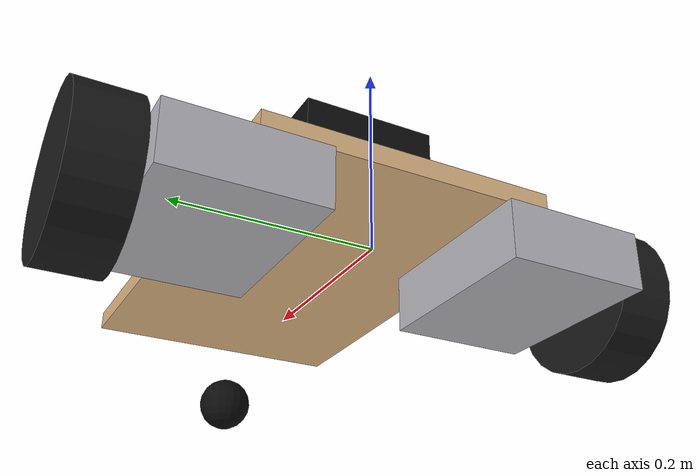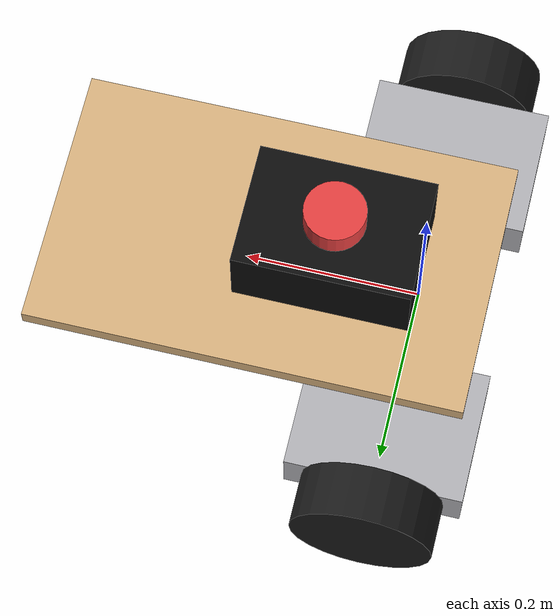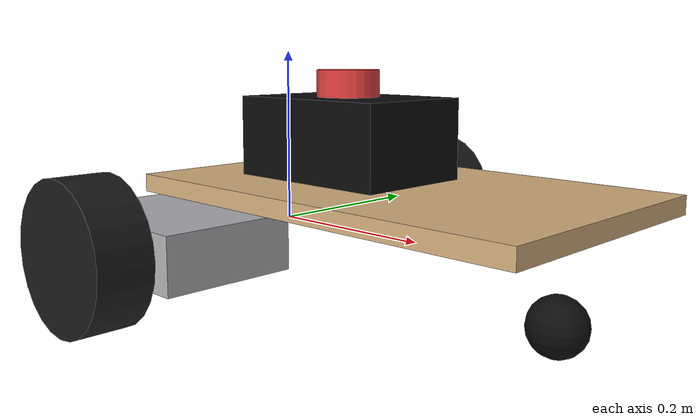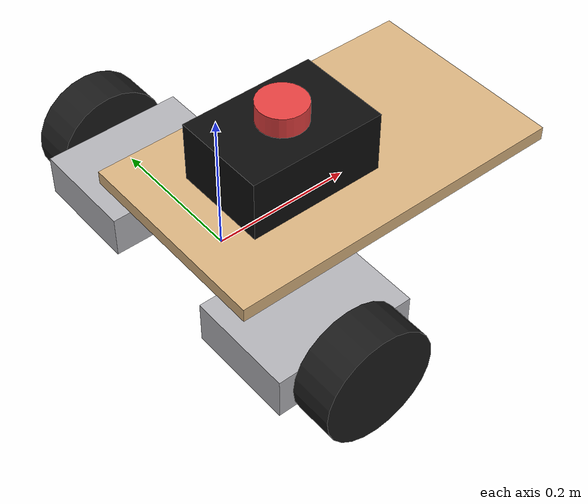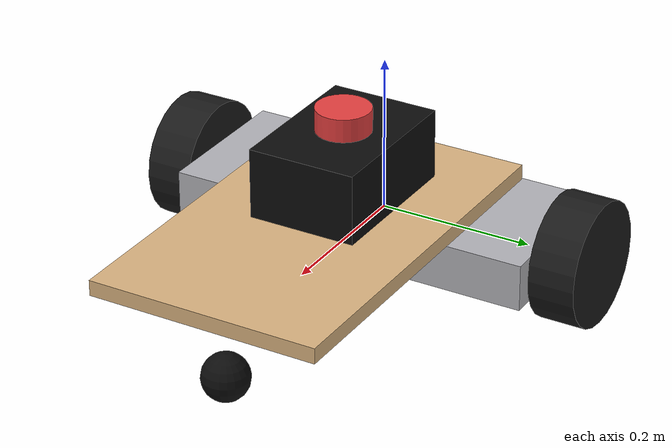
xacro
<?xml version="1.0"?>
<robot name="hoverbot" xmlns:xacro="http://www.ros.org/wiki/xacro">

  <!-- ===================== ПАРАМЕТРЫ (метры, кг) ===================== -->
  <!-- Колёса гироскутера 6.5" -->
  <xacro:property name="wheel_radius"     value="0.08"/>    <!-- замер: Ø 16 см -->
  <xacro:property name="wheel_width"      value="0.06"/>    <!-- замер: (60 − 48) / 2 -->
  <xacro:property name="wheel_separation" value="0.54"/>    <!-- замер: по центрам шин (60 снаружи + 48 изнутри) / 2 -->
  <xacro:property name="wheel_mass"       value="2.5"/>     <!-- мотор-колесо тяжёлое -->

  <!-- Корпуса гироскутера (алюминиевые коробки возле колёс) -->
  <xacro:property name="housing_length"   value="0.20"/>
  <xacro:property name="housing_width"    value="0.15"/>
  <xacro:property name="housing_height"   value="0.06"/>
  <xacro:property name="housing_mass"     value="3.0"/>     <!-- каждый, вместе с платой/аккум. -->

  <!-- Деревянная площадка: лежит на гироскутере и уходит вперёд, к кастеру.
       Назад за колёса не выступает. -->
  <xacro:property name="deck_length"      value="0.50"/>    <!-- замер: вдоль X -->
  <xacro:property name="deck_width"       value="0.30"/>    <!-- замер: вдоль Y -->
  <xacro:property name="deck_thickness"   value="0.02"/>
  <xacro:property name="deck_rear_x"      value="-0.08"/>   <!-- задний край площадки от оси (по фото) -->
  <xacro:property name="deck_bottom_z"    value="0.04"/>    <!-- TODO: низ площадки над осью колёс -->
  <xacro:property name="deck_mass"        value="2.0"/>

  <!-- Поворотное колесо (кастер) спереди, под передним краем площадки -->
  <xacro:property name="caster_radius"    value="0.03"/>    <!-- TODO: радиус колёсика кастера -->
  <xacro:property name="caster_x"         value="0.37"/>    <!-- TODO: от оси колёс до оси кастера -->

  <!-- Короб под лидар (3D-печать) -->
  <xacro:property name="box_length"       value="0.20"/>
  <xacro:property name="box_width"        value="0.14"/>
  <xacro:property name="box_height"       value="0.09"/>

  <!-- Лидар от пылесоса: центр вращения и высота плоскости луча -->
  <xacro:property name="lidar_x"          value="0.10"/>    <!-- замер: 10 см от оси колёс вперёд -->
  <xacro:property name="lidar_y"          value="0.0"/>
  <xacro:property name="lidar_height"     value="0.25"/>    <!-- замер: от пола до лидара -->
  <xacro:property name="lidar_rate"       value="5"/>       <!-- об/с -->
  <xacro:property name="lidar_samples"    value="360"/>
  <xacro:property name="lidar_range_min"  value="0.15"/>
  <xacro:property name="lidar_range_max"  value="8.0"/>
  <xacro:property name="lidar_noise"      value="0.01"/>    <!-- СКО дальности, м -->

  <!-- Производные величины -->
  <xacro:property name="deck_center_x" value="${deck_rear_x + deck_length / 2}"/>
  <xacro:property name="deck_top_z"    value="${deck_bottom_z + deck_thickness}"/>
  <xacro:property name="lidar_z"       value="${lidar_height - wheel_radius}"/>
  <xacro:property name="caster_z"      value="${caster_radius - wheel_radius}"/>

  <!-- ===================== МАКРОСЫ ИНЕРЦИИ ===================== -->
  <xacro:macro name="box_inertia" params="m x y z">
    <inertial>
      <mass value="${m}"/>
      <inertia ixx="${m * (y*y + z*z) / 12}" ixy="0" ixz="0"
               iyy="${m * (x*x + z*z) / 12}" iyz="0"
               izz="${m * (x*x + y*y) / 12}"/>
    </inertial>
  </xacro:macro>

  <material name="wood">  <color rgba="0.85 0.70 0.50 1"/></material>
  <material name="alu">   <color rgba="0.70 0.70 0.72 1"/></material>
  <material name="rubber"><color rgba="0.10 0.10 0.10 1"/></material>
  <material name="plastic"><color rgba="0.05 0.05 0.05 1"/></material>
  <material name="red">   <color rgba="0.90 0.25 0.25 1"/></material>

  <!-- ===================== КОРПУС ===================== -->
  <link name="base_link">
    <!-- корпуса гироскутера -->
    <xacro:macro name="housing" params="side">
      <visual>
        <origin xyz="0 ${side * (wheel_separation / 2 - wheel_width / 2 - housing_width / 2)} 0"/>
        <geometry><box size="${housing_length} ${housing_width} ${housing_height}"/></geometry>
        <material name="alu"/>
      </visual>
      <collision>
        <origin xyz="0 ${side * (wheel_separation / 2 - wheel_width / 2 - housing_width / 2)} 0"/>
        <geometry><box size="${housing_length} ${housing_width} ${housing_height}"/></geometry>
      </collision>
    </xacro:macro>
    <xacro:housing side="1"/>
    <xacro:housing side="-1"/>

    <!-- деревянная площадка -->
    <visual>
      <origin xyz="${deck_center_x} 0 ${deck_bottom_z + deck_thickness / 2}"/>
      <geometry><box size="${deck_length} ${deck_width} ${deck_thickness}"/></geometry>
      <material name="wood"/>
    </visual>
    <collision>
      <origin xyz="${deck_center_x} 0 ${deck_bottom_z + deck_thickness / 2}"/>
      <geometry><box size="${deck_length} ${deck_width} ${deck_thickness}"/></geometry>
    </collision>

    <!-- короб под лидар -->
    <visual>
      <origin xyz="${lidar_x} ${lidar_y} ${deck_top_z + box_height / 2}"/>
      <geometry><box size="${box_length} ${box_width} ${box_height}"/></geometry>
      <material name="plastic"/>
    </visual>
    <collision>
      <origin xyz="${lidar_x} ${lidar_y} ${deck_top_z + box_height / 2}"/>
      <geometry><box size="${box_length} ${box_width} ${box_height}"/></geometry>
    </collision>

    <!-- масса: корпуса + площадка, центр масс примерно у оси -->
    <xacro:box_inertia m="${2 * housing_mass + deck_mass}"
                       x="${deck_length}" y="${wheel_separation}" z="0.1"/>
  </link>

  <!-- ===================== КОЛЁСА ===================== -->
  <xacro:macro name="wheel" params="name side">
    <link name="${name}_wheel">
      <visual>
        <origin rpy="${pi / 2} 0 0"/>
        <geometry><cylinder radius="${wheel_radius}" length="${wheel_width}"/></geometry>
        <material name="rubber"/>
      </visual>
      <collision>
        <origin rpy="${pi / 2} 0 0"/>
        <geometry><cylinder radius="${wheel_radius}" length="${wheel_width}"/></geometry>
      </collision>
      <inertial>
        <mass value="${wheel_mass}"/>
        <inertia ixx="${wheel_mass * (3 * wheel_radius * wheel_radius + wheel_width * wheel_width) / 12}"
                 ixy="0" ixz="0"
                 iyy="${wheel_mass * wheel_radius * wheel_radius / 2}" iyz="0"
                 izz="${wheel_mass * (3 * wheel_radius * wheel_radius + wheel_width * wheel_width) / 12}"/>
      </inertial>
    </link>
    <joint name="${name}_wheel_joint" type="continuous">
      <parent link="base_link"/>
      <child link="${name}_wheel"/>
      <origin xyz="0 ${side * wheel_separation / 2} 0"/>
      <axis xyz="0 1 0"/>
    </joint>
    <gazebo reference="${name}_wheel">
      <mu1>1.0</mu1>
      <mu2>1.0</mu2>
    </gazebo>
  </xacro:macro>
  <xacro:wheel name="left"  side="1"/>
  <xacro:wheel name="right" side="-1"/>

  <!-- ===================== ПОВОРОТНОЕ КОЛЕСО (КАСТЕР) ===================== -->
  <link name="caster">
    <visual>
      <geometry><sphere radius="${caster_radius}"/></geometry>
      <material name="plastic"/>
    </visual>
    <collision>
      <geometry><sphere radius="${caster_radius}"/></geometry>
    </collision>
    <inertial>
      <mass value="0.1"/>
      <inertia ixx="4e-5" ixy="0" ixz="0" iyy="4e-5" iyz="0" izz="4e-5"/>
    </inertial>
  </link>
  <joint name="caster_joint" type="fixed">
    <parent link="base_link"/>
    <child link="caster"/>
    <origin xyz="${caster_x} 0 ${caster_z}"/>
  </joint>
  <gazebo reference="caster">
    <!-- без трения: шар имитирует свободно поворачивающийся кастер -->
    <mu1>0.0</mu1>
    <mu2>0.0</mu2>
  </gazebo>

  <!-- ===================== ЛИДАР ===================== -->
  <link name="laser">
    <visual>
      <origin xyz="0 0 -0.01"/>
      <geometry><cylinder radius="0.035" length="0.04"/></geometry>
      <material name="red"/>
    </visual>
    <inertial>
      <mass value="0.2"/>
      <inertia ixx="1e-4" ixy="0" ixz="0" iyy="1e-4" iyz="0" izz="1e-4"/>
    </inertial>
  </link>
  <joint name="laser_joint" type="fixed">
    <parent link="base_link"/>
    <child link="laser"/>
    <origin xyz="${lidar_x} ${lidar_y} ${lidar_z}"/>
  </joint>

  <gazebo reference="laser">
    <sensor name="lidar" type="gpu_lidar">
      <topic>scan</topic>
      <gz_frame_id>laser</gz_frame_id>
      <update_rate>${lidar_rate}</update_rate>
      <always_on>true</always_on>
      <visualize>true</visualize>
      <lidar>
        <scan>
          <horizontal>
            <samples>${lidar_samples}</samples>
            <resolution>1</resolution>
            <min_angle>${-pi}</min_angle>
            <max_angle>${pi - 2 * pi / lidar_samples}</max_angle>
          </horizontal>
        </scan>
        <range>
          <min>${lidar_range_min}</min>
          <max>${lidar_range_max}</max>
          <resolution>0.01</resolution>
        </range>
        <noise>
          <type>gaussian</type>
          <mean>0.0</mean>
          <stddev>${lidar_noise}</stddev>
        </noise>
      </lidar>
    </sensor>
  </gazebo>

  <!-- ===================== IMU (MPU6050) ===================== -->
  <gazebo reference="base_link">
    <sensor name="imu" type="imu">
      <topic>imu</topic>
      <gz_frame_id>base_link</gz_frame_id>
      <update_rate>100</update_rate>
      <always_on>true</always_on>
    </sensor>
  </gazebo>

  <!-- ===================== ПЛАГИНЫ ===================== -->
  <gazebo>
    <plugin filename="gz-sim-diff-drive-system" name="gz::sim::systems::DiffDrive">
      <left_joint>left_wheel_joint</left_joint>
      <right_joint>right_wheel_joint</right_joint>
      <wheel_separation>${wheel_separation}</wheel_separation>
      <wheel_radius>${wheel_radius}</wheel_radius>
      <max_linear_acceleration>1.0</max_linear_acceleration>
      <max_angular_acceleration>2.0</max_angular_acceleration>
      <topic>cmd_vel</topic>
      <odom_topic>odom</odom_topic>
      <tf_topic>tf</tf_topic>
      <frame_id>odom</frame_id>
      <child_frame_id>base_link</child_frame_id>
      <odom_publish_frequency>50</odom_publish_frequency>
    </plugin>
    <plugin filename="gz-sim-joint-state-publisher-system"
            name="gz::sim::systems::JointStatePublisher">
      <topic>joint_states</topic>
    </plugin>
  </gazebo>

</robot>
